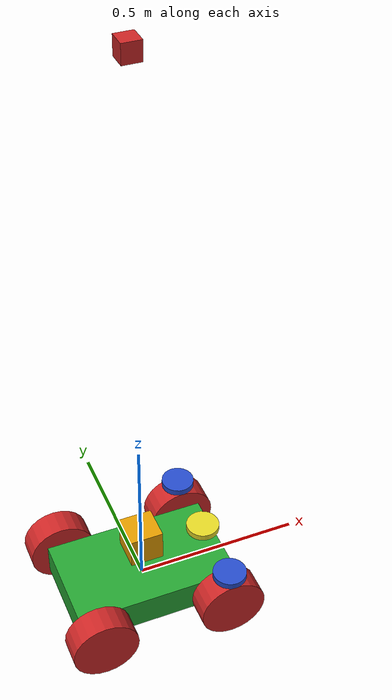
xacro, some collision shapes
<?xml version="1.0"?>
<robot name="steer_bot" xmlns:xacro="http://wiki.ros.org/xacro">
  <!-- Include xacro for inertials, materials and wheels -->
  <xacro:include filename="$(find steer_bot_description)/urdf/wheel.xacro"/>
  <xacro:include filename="$(find steer_bot_description)/urdf/hokuyo.xacro"/>
  <xacro:include filename="$(find steer_bot_description)/urdf/camera.xacro"/>
  <xacro:include filename="$(find steer_bot_description)/urdf/camera.gazebo"/>
  <xacro:property name="robot_namespace" value="/steer_bot"/>

  <!-- Gazebo plugins -->
  <gazebo>
    <!-- Load ros_control plugin using the steer_bot_hardware_gazebo
    implementation of the hardware_interface::RobotHW -->
    <plugin name="gazebo_ros_control" filename="libgazebo_ros_control.so">
      <robotNamespace>${robot_namespace}</robotNamespace>
      <robotSimType>steer_bot_hardware_gazebo/SteerBotHardwareGazebo</robotSimType>
      <legacyModeNS>false</legacyModeNS>
    </plugin>
  </gazebo>

  <!-- Math constants -->
  <xacro:property name="deg_to_rad" value="0.01745329251994329577"/>

  <!-- Robot base dimensions -->
  <xacro:property name="base_length" value="0.5" />
  <xacro:property name="base_width" value="0.3" />
  <xacro:property name="base_height" value="0.1" />
  <xacro:property name="base_mass" value="5" />

  <!-- Wheel link dimensions -->
  <xacro:property name="wheel_radius" value="0.1" />
  <xacro:property name="wheel_thickness" value="0.08" />
  <xacro:property name="wheel_mass" value="1" />

  <!-- Steering link dimensions -->
  <xacro:property name="steer_radius" value="0.05" />
  <xacro:property name="steer_thickness" value="0.02" />
  <xacro:property name="steer_mass" value="1" />

  <!-- Axle positions -->
  <xacro:property name="axle_offset" value="0.05" />
  <xacro:property name="steer_offset" value="0.02" />

  <!-- Base link -->
  <link name="base_link">
    <visual>
      <origin xyz="0 0 0" rpy="0 0 0"/>
      <geometry>
        <box size="${base_length} ${base_width} ${base_height}"/>
      </geometry>
      <material name="green" />
    </visual>
    <collision>
      <origin xyz="0 0 0" rpy="0 0 0"/>
      <geometry>
        <box size="${base_length} ${base_width} ${base_height}"/>
      </geometry>
    </collision>
    <xacro:solid_cuboid_inertial
        rpy="0 0 0" xyz="0 0 0"
        mass="${base_mass}"
        x="${base_length}" y="${base_width}" z="${base_height}" />
  </link>

  <!-- Front steer and rear wheel joints required for ackermann_steering_controller -->
  <xacro:front_steer
    name="front"
    parent="base"
    steer_radius="${steer_radius}"
    steer_thickness="${steer_thickness}"
    steer_mass="${steer_mass}"
    base_length="${base_length}"
    base_width="${base_width}"
    axle_offset="${axle_offset}"
    steer_height="${wheel_radius+steer_offset}">
  </xacro:front_steer>

  <xacro:rear_wheel
    name="rear"
    parent="base"
    wheel_radius="${wheel_radius/4}"
    wheel_thickness="${wheel_thickness/2}"
    wheel_mass="${wheel_mass/32}">
    <origin xyz="${-base_length/2+axle_offset} 0 0" rpy="${-90 * deg_to_rad} 0 0"/>
  </xacro:rear_wheel>

  <!-- Steerable front wheels -->
  <xacro:front_wheel_lr
    name="front_right"
    parent="base"
    reflect="-1"
    wheel_radius="${wheel_radius}"
    wheel_thickness="${wheel_thickness}"
    wheel_mass="${wheel_mass}"
    steer_radius="${steer_radius}"
    steer_thickness="${steer_thickness}"
    steer_mass="${steer_mass}"
    base_length="${base_length}"
    base_width="${base_width}"
    axle_offset="${axle_offset}"
    steer_height="${wheel_radius+steer_offset}">
  </xacro:front_wheel_lr>
  <xacro:front_wheel_lr
    name="front_left"
    parent="base"
    reflect="1"
    wheel_radius="${wheel_radius}"
    wheel_thickness="${wheel_thickness}"
    wheel_mass="${wheel_mass}"
    steer_radius="${steer_radius}"
    steer_thickness="${steer_thickness}"
    steer_mass="${steer_mass}"
    base_length="${base_length}"
    base_width="${base_width}"
    axle_offset="${axle_offset}"
    steer_height="${wheel_radius+steer_offset}">
  </xacro:front_wheel_lr>

  <!-- Rear wheels -->
  <xacro:rear_wheel_lr
    name="rear_right"
    parent="base"
    wheel_radius="${wheel_radius}"
    wheel_thickness="${wheel_thickness}"
    wheel_mass="${wheel_mass}">
    <origin xyz="${-base_length/2+axle_offset} ${-base_width/2-axle_offset} 0" rpy="${-90 * deg_to_rad} 0 0"/>
  </xacro:rear_wheel_lr>
  <xacro:rear_wheel_lr
    name="rear_left"
    parent="base"
    wheel_radius="${wheel_radius}"
    wheel_thickness="${wheel_thickness}"
    wheel_mass="${wheel_mass}">
    <origin xyz="${-base_length/2+axle_offset} ${+base_width/2+axle_offset} 0" rpy="${-90 * deg_to_rad} 0 0"/>
  </xacro:rear_wheel_lr>

  <!-- Colour -->
  <gazebo reference="base_link">
    <material>Gazebo/Green</material>
  </gazebo>
<!-- hokuyo -->
  <gazebo reference="hokuyo_link">
    <sensor type="ray" name="head_hokuyo_sensor">
      <pose>0 0 0 0 0 0</pose>
      <visualize>false</visualize>
      <update_rate>40</update_rate>
      <ray>
        <scan>
          <horizontal>
            <samples>720</samples>
            <resolution>1</resolution>
            <min_angle>0</min_angle>
            <max_angle>6.2831184</max_angle>
          </horizontal>
        </scan>
        <range>
          <min>0.10</min>
          <max>8.0</max>
          <resolution>0.01</resolution>
        </range>
        <noise>
          <type>gaussian</type>
          <mean>0.0</mean>
          <stddev>0.01</stddev>
        </noise>
      </ray>
      <plugin name="gazebo_ros_head_hokuyo_controller" filename="libgazebo_ros_laser.so">
        <topicName>/scan</topicName>
        <frameName>hokuyo_link</frameName>
      </plugin>
    </sensor>
  </gazebo>
</robot>

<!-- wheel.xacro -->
<robot name="wheel" xmlns:xacro="http://wiki.ros.org/xacro">
  <!-- Include xacro for materials and inertials -->
  <xacro:include filename="$(find steer_bot_description)/urdf/materials.xacro"/>
  <xacro:include filename="$(find steer_bot_description)/urdf/inertials.xacro"/>

  <!-- Properties -->
  <xacro:property name="steer_effort" value="10.0"/>
  <xacro:property name="steer_velocity" value="5.0"/>
  <xacro:property name="steer_limit_deg" value="45.0"/>

  <!-- Bicycle model front steering link (required for steer_drive_controller) -->
  <xacro:macro name="front_steer"
    params="
      name
      parent
      steer_radius
      steer_thickness
      steer_mass
      base_length
      base_width
      axle_offset
      steer_height">
    <link name="${name}_steer_link">
      <visual>
        <origin xyz="0 0 0" rpy="0 0 0"/>
        <geometry>
          <cylinder radius="${steer_radius}" length="${steer_thickness}"/>
        </geometry>
        <material name="yellow" />
      </visual>
      <collision>
        <origin xyz="0 0 0" rpy="0 0 0"/>
        <geometry>
          <cylinder radius="${steer_radius}" length="${steer_thickness}"/>
        </geometry>
      </collision>
      <xacro:solid_cylinder_inertial
          rpy="0 0 0" xyz="0 0 0"
          mass="${steer_mass}"
          radius="${steer_radius}" length="${steer_thickness}" />
    </link>

    <joint name="${name}_steer_joint" type="revolute">
      <parent link="${parent}_link"/>
      <child link="${name}_steer_link"/>
      <origin xyz="${base_length/2-axle_offset} 0 ${steer_height}" rpy="0 0 0"/>
      <axis xyz="0 0 1"/>
      <limit effort="${steer_effort}"
             lower="${-180.0 * deg_to_rad}" upper="${180.0 * deg_to_rad}"
             velocity="${steer_velocity}"/>
    </joint>

    <transmission name="${name}_steer_joint_trans">
      <type>transmission_interface/SimpleTransmission</type>
      <actuator name="${name}_steer_joint_motor">
        <mechanicalReduction>1</mechanicalReduction>
        <hardwareInterface>hardware_interface/PositionJointInterface</hardwareInterface>
      </actuator>
      <joint name="${name}_steer_joint">
        <hardwareInterface>hardware_interface/PositionJointInterface</hardwareInterface>
      </joint>
    </transmission>

    <gazebo reference="${name}_steer_link">
      <material>Gazebo/Yellow</material>
    </gazebo>
  </xacro:macro>

  <!-- Car steering model front (steerable) wheel links (left/right) -->
  <xacro:macro name="front_wheel_lr"
    params="
      name
      parent
      reflect
      wheel_radius
      wheel_thickness
      wheel_mass
      steer_radius
      steer_thickness
      steer_mass
      base_length
      base_width
      axle_offset
      steer_height">
    <link name="${name}_steer_link">
      <visual>
        <origin xyz="0 0 0" rpy="0 0 0"/>
        <geometry>
          <cylinder radius="${steer_radius}" length="${steer_thickness}"/>
        </geometry>
        <material name="blue" />
      </visual>
      <collision>
        <origin xyz="0 0 0" rpy="0 0 0"/>
        <geometry>
          <cylinder radius="${steer_radius}" length="${steer_thickness}"/>
        </geometry>
      </collision>
      <xacro:solid_cylinder_inertial
          rpy="0 0 0" xyz="0 0 0"
          mass="${steer_mass}"
          radius="${steer_radius}" length="${steer_thickness}" />
    </link>

    <joint name="${name}_steer_joint" type="revolute">
      <parent link="${parent}_link"/>
      <child link="${name}_steer_link"/>
      <origin xyz="${base_length/2-axle_offset} ${reflect*(base_width/2+axle_offset)} ${steer_height}" rpy="0 0 0"/>
      <axis xyz="0 0 1"/>
      <limit effort="${steer_effort}"
             lower="${steer_limit_deg * deg_to_rad * -1.0}" upper="${steer_limit_deg * deg_to_rad}"
             velocity="${steer_velocity}"/>
    </joint>

    <link name="${name}_wheel_link">
      <visual>
        <origin xyz="0 0 0" rpy="0 0 0"/>
        <geometry>
          <cylinder radius="${wheel_radius}" length="${wheel_thickness}"/>
        </geometry>
        <material name="red" />
      </visual>
      <collision>
        <origin xyz="0 0 0" rpy="0 0 0"/>
        <geometry>
          <cylinder radius="${wheel_radius}" length="${wheel_thickness}"/>
        </geometry>
        <surface>
          <friction>
            <ode>
              <mu>0.00</mu>
              <mu2>0.00</mu2>
            </ode>
          </friction>
        </surface>
      </collision>
      <xacro:solid_cylinder_inertial
          rpy="0 0 0" xyz="0 0 0"
          mass="${wheel_mass}"
          radius="${wheel_radius}" length="${wheel_thickness}" />
    </link>

    <joint name="${name}_wheel_joint" type="continuous">
      <parent link="${name}_steer_link"/>
      <child link="${name}_wheel_link"/>
      <origin xyz="0 0 ${-steer_height}" rpy="${-90 * deg_to_rad} 0 0"/>
      <axis xyz="0 0 1"/>
    </joint>

    <transmission name="${name}_steer_joint_trans">
      <type>transmission_interface/SimpleTransmission</type>
      <actuator name="${name}_steer_joint_motor">
        <mechanicalReduction>1</mechanicalReduction>
        <hardwareInterface>hardware_interface/PositionJointInterface</hardwareInterface>
      </actuator>
      <joint name="${name}_steer_joint">
        <hardwareInterface>hardware_interface/PositionJointInterface</hardwareInterface>
      </joint>
    </transmission>

    <transmission name="${name}_wheel_joint_trans">
      <type>transmission_interface/SimpleTransmission</type>
      <actuator name="${name}_wheel_joint_motor">
        <mechanicalReduction>1</mechanicalReduction>
        <hardwareInterface>hardware_interface/VelocityJointInterface</hardwareInterface>
      </actuator>
      <joint name="${name}_wheel_joint">
        <hardwareInterface>hardware_interface/VelocityJointInterface</hardwareInterface>
      </joint>
    </transmission>

    <gazebo reference="${name}_steer_link">
      <material>Gazebo/Blue</material>
    </gazebo>

    <gazebo reference="${name}_wheel_link">
      <material>Gazebo/Red</material>
    </gazebo>
  </xacro:macro>

  <!-- Bicycle model rear wheel link (required for steer_drive_controller) -->
  <xacro:macro name="rear_wheel"
    params="
      name
      parent
      wheel_radius
      wheel_thickness
      wheel_mass
      *origin">
    <link name="${name}_wheel_link">
      <visual>
        <origin xyz="0 0 0" rpy="0 0 0"/>
        <geometry>
          <cylinder radius="${wheel_radius}" length="${wheel_thickness}"/>
        </geometry>
        <material name="yellow" />
      </visual>
      <collision>
        <origin xyz="0 0 0" rpy="0 0 0"/>
        <geometry>
          <cylinder radius="${wheel_radius}" length="${wheel_thickness}"/>
        </geometry>
        <surface>
          <friction>
            <ode>
              <mu>0.00</mu>
              <mu2>0.00</mu2>
            </ode>
          </friction>
        </surface>
      </collision>
      <xacro:solid_cylinder_inertial
          rpy="0 0 0" xyz="0 0 0"
          mass="${wheel_mass}"
          radius="${wheel_radius}" length="${wheel_thickness}" />
    </link>

    <joint name="${name}_wheel_joint" type="continuous">
      <parent link="${parent}_link"/>
      <child link="${name}_wheel_link"/>
      <xacro:insert_block name="origin"/>
      <axis xyz="0 0 1"/>
    </joint>

    <transmission name="${name}_wheel_joint_trans">
      <type>transmission_interface/SimpleTransmission</type>
      <actuator name="${name}_wheel_joint_motor">
        <mechanicalReduction>1</mechanicalReduction>
        <hardwareInterface>hardware_interface/VelocityJointInterface</hardwareInterface>
      </actuator>
      <joint name="${name}_wheel_joint">
        <hardwareInterface>hardware_interface/VelocityJointInterface</hardwareInterface>
      </joint>
    </transmission>

    <gazebo reference="${name}_wheel_link">
      <material>Gazebo/Yellow</material>
    </gazebo>
  </xacro:macro>

  <!-- Bicycle model front wheel link (passive - no transmission) -->
  <xacro:macro name="front_wheel"
    params="
      name
      parent
      wheel_radius
      wheel_thickness
      wheel_mass
      *origin">
    <link name="${name}_wheel_link">
      <visual>
        <origin xyz="0 0 0" rpy="0 0 0"/>
        <geometry>
          <cylinder radius="${wheel_radius}" length="${wheel_thickness}"/>
        </geometry>
        <material name="yellow" />
      </visual>
      <collision>
        <origin xyz="0 0 0" rpy="0 0 0"/>
        <geometry>
          <cylinder radius="${wheel_radius}" length="${wheel_thickness}"/>
        </geometry>
        <surface>
          <friction>
            <ode>
              <mu>0.00</mu>
              <mu2>0.00</mu2>
            </ode>
          </friction>
        </surface>
      </collision>
      <xacro:solid_cylinder_inertial
          rpy="0 0 0" xyz="0 0 0"
          mass="${wheel_mass}"
          radius="${wheel_radius}" length="${wheel_thickness}" />
    </link>

    <joint name="${name}_wheel_joint" type="continuous">
      <parent link="${parent}_link"/>
      <child link="${name}_wheel_link"/>
      <xacro:insert_block name="origin"/>
      <axis xyz="0 0 1"/>
    </joint>

    <gazebo reference="${name}_wheel_link">
      <material>Gazebo/Yellow</material>
    </gazebo>

    <gazebo reference="${name}_wheel_joint">
      <provideFeedback>true</provideFeedback>
    </gazebo>
  </xacro:macro>

  <!-- Car steering model rear wheel links (left/right) -->
  <xacro:macro name="rear_wheel_lr"
    params="
      name
      parent
      wheel_radius
      wheel_thickness
      wheel_mass
      *origin">
    <link name="${name}_wheel_link">
      <visual>
        <origin xyz="0 0 0" rpy="0 0 0"/>
        <geometry>
          <cylinder radius="${wheel_radius}" length="${wheel_thickness}"/>
        </geometry>
        <material name="red" />
      </visual>
      <collision>
        <origin xyz="0 0 0" rpy="0 0 0"/>
        <geometry>
          <cylinder radius="${wheel_radius}" length="${wheel_thickness}"/>
        </geometry>
        <surface>
          <friction>
            <ode>
              <mu>0.00</mu>
              <mu2>0.00</mu2>
            </ode>
          </friction>
        </surface>
      </collision>
      <xacro:solid_cylinder_inertial
          rpy="0 0 0" xyz="0 0 0"
          mass="${wheel_mass}"
          radius="${wheel_radius}" length="${wheel_thickness}" />
    </link>

    <joint name="${name}_wheel_joint" type="continuous">
      <parent link="${parent}_link"/>
      <child link="${name}_wheel_link"/>
      <xacro:insert_block name="origin"/>
      <axis xyz="0 0 1"/>
    </joint>

    <transmission name="${name}_wheel_joint_trans">
      <type>transmission_interface/SimpleTransmission</type>
      <actuator name="${name}_wheel_joint_motor">
        <mechanicalReduction>1</mechanicalReduction>
        <hardwareInterface>hardware_interface/VelocityJointInterface</hardwareInterface>
      </actuator>
      <joint name="${name}_wheel_joint">
        <hardwareInterface>hardware_interface/VelocityJointInterface</hardwareInterface>
      </joint>
    </transmission>

    <gazebo reference="${name}_wheel_link">
      <material>Gazebo/Red</material>
    </gazebo>
  </xacro:macro>
</robot>

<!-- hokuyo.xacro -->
<robot xmlns:xacro="http://www.ros.org/wiki/xacro">
<!-- Hokuyo Laser -->
  <link name="hokuyo_link">
    <collision>
      <origin xyz="0 0 0" rpy="0 0 0"/>
      <geometry>
    <box size="0.1 0.1 0.1"/>
      </geometry>
    </collision>

    <visual>
      <origin xyz="0 0 0" rpy="0 0 0"/>
      <geometry>
        <mesh filename="package://steer_bot_description/meshes/hokuyo.dae"/>
      </geometry>
    </visual>

    <inertial>
      <mass value="1e-5" />
      <origin xyz="0 0 0" rpy="0 0 0"/>
      <inertia ixx="1e-6" ixy="0" ixz="0" iyy="1e-6" iyz="0" izz="1e-6" />
    </inertial>
  </link>
  <joint name="hokuyo_joint" type="fixed">
    <axis xyz="0 1 0" />
    <origin xyz="0 0 0.15" rpy="0 0 0"/>
    <parent link="base_link"/>
    <child link="hokuyo_link"/>
  </joint>
</robot>

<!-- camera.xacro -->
<robot xmlns:xacro="http://www.ros.org/wiki/xacro">
 <xacro:property name="camera_link" value="0.05" /> <!-- Size of square 'camera' box -->
  <joint name="camera_joint" type="fixed">
    <axis xyz="0 1 0" />
    <origin xyz="0 0 1.7" rpy="0 0 0"/>
    <parent link="base_link"/>
    <child link="steer_bot/camera_link"/>
  </joint>

  <!-- Camera -->
  <link name="steer_bot/camera_link">
    <collision>
      <origin xyz="0 0 0" rpy="0 0 0"/>
      <geometry>
    <box size="${camera_link} ${camera_link} ${camera_link}"/>
      </geometry>
    </collision>

    <visual>
      <origin xyz="0 0 0" rpy="0 0 0"/>
      <geometry>
    <box size="${camera_link} ${camera_link} ${camera_link}"/>
      </geometry>
      <material name="red"/>
    </visual>

    <inertial>
      <mass value="1e-5" />
      <origin xyz="0 0 0" rpy="0 0 0"/>
      <inertia ixx="1e-6" ixy="0" ixz="0" iyy="1e-6" iyz="0" izz="1e-6" />
    </inertial>
  </link>
</robot>
